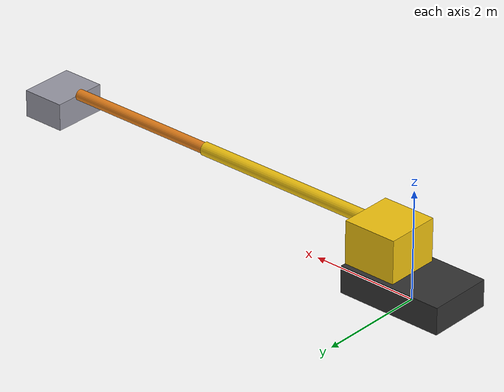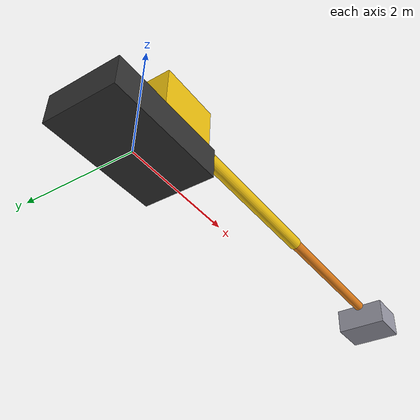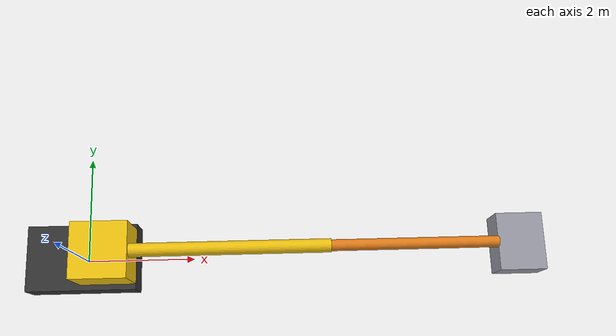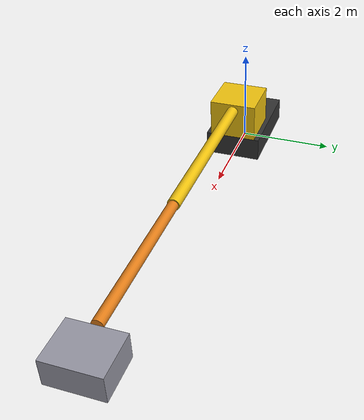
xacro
<?xml version="1.0"?>
<robot xmlns:xacro="http://www.ros.org/wiki/xacro" name="excavator">

  <!--  Excavator Robot URDF / Xacro                                 -->
  <!--  Links: base_link → chassis → cabin → boom → stick → bucket  -->
  <!--  Joints: base_joint (fixed to world)                          -->
  <!--          cabin_joint (continuous – swing)                     -->
  <!--          boom_joint  (revolute)                               -->
  <!--          stick_joint (revolute)                               -->
  <!--          bucket_joint (revolute)                              -->

  <!-- ===================== PROPERTIES ============================ -->
  <xacro:property name="chassis_length" value="2.0"/>
  <xacro:property name="chassis_width"  value="1.2"/>
  <xacro:property name="chassis_height" value="0.5"/>

  <xacro:property name="cabin_length" value="1.0"/>
  <xacro:property name="cabin_width"  value="1.0"/>
  <xacro:property name="cabin_height" value="0.8"/>

  <xacro:property name="boom_length"  value="3.5"/>
  <xacro:property name="boom_radius"  value="0.12"/>

  <xacro:property name="stick_length" value="2.9"/>
  <xacro:property name="stick_radius" value="0.10"/>

  <xacro:property name="bucket_length" value="0.8"/>
  <xacro:property name="bucket_width"  value="1.0"/>
  <xacro:property name="bucket_depth"  value="0.5"/>

  <!-- Colours -->
  <material name="yellow">
    <color rgba="0.95 0.77 0.06 1.0"/>
  </material>
  <material name="dark_grey">
    <color rgba="0.2 0.2 0.2 1.0"/>
  </material>
  <material name="orange">
    <color rgba="0.9 0.5 0.1 1.0"/>
  </material>
  <material name="steel">
    <color rgba="0.6 0.6 0.65 1.0"/>
  </material>

  <!-- ===================== BASE LINK ============================ -->
  <!-- world → base_link transform is published dynamically by base_motion_node -->
  <link name="base_link">
    <visual>
      <geometry>
        <box size="${chassis_length} ${chassis_width} ${chassis_height}"/>
      </geometry>
      <origin xyz="0 0 ${chassis_height/2}" rpy="0 0 0"/>
      <material name="dark_grey"/>
    </visual>
    <collision>
      <geometry>
        <box size="${chassis_length} ${chassis_width} ${chassis_height}"/>
      </geometry>
      <origin xyz="0 0 ${chassis_height/2}" rpy="0 0 0"/>
    </collision>
    <inertial>
      <mass value="5000.0"/>
      <origin xyz="0 0 ${chassis_height/2}" rpy="0 0 0"/>
      <inertia ixx="500.0" ixy="0" ixz="0" iyy="500.0" iyz="0" izz="500.0"/>
    </inertial>
  </link>

  <!-- ===================== CABIN (SWING) ======================== -->
  <link name="cabin_link">
    <visual>
      <geometry>
        <box size="${cabin_length} ${cabin_width} ${cabin_height}"/>
      </geometry>
      <origin xyz="${cabin_length/2} 0 ${cabin_height/2}" rpy="0 0 0"/>
      <material name="yellow"/>
    </visual>
    <collision>
      <geometry>
        <box size="${cabin_length} ${cabin_width} ${cabin_height}"/>
      </geometry>
      <origin xyz="${cabin_length/2} 0 ${cabin_height/2}" rpy="0 0 0"/>
    </collision>
    <inertial>
      <mass value="2000.0"/>
      <origin xyz="${cabin_length/2} 0 ${cabin_height/2}" rpy="0 0 0"/>
      <inertia ixx="200.0" ixy="0" ixz="0" iyy="200.0" iyz="0" izz="200.0"/>
    </inertial>
  </link>

  <joint name="cabin_joint" type="continuous">
    <parent link="base_link"/>
    <child  link="cabin_link"/>
    <origin xyz="0 0 ${chassis_height}" rpy="0 0 0"/>
    <axis xyz="0 0 1"/>
    <dynamics damping="50.0" friction="10.0"/>
  </joint>

  <!-- ===================== BOOM ================================= -->
  <link name="boom_link">
    <visual>
      <geometry>
        <cylinder length="${boom_length}" radius="${boom_radius}"/>
      </geometry>
      <!-- Cylinder centred at half-length along local Z, then tilt to point along X -->
      <origin xyz="${boom_length/2} 0 0" rpy="0 ${pi/2} 0"/>
      <material name="yellow"/>
    </visual>
    <collision>
      <geometry>
        <cylinder length="${boom_length}" radius="${boom_radius}"/>
      </geometry>
      <origin xyz="${boom_length/2} 0 0" rpy="0 ${pi/2} 0"/>
    </collision>
    <inertial>
      <mass value="500.0"/>
      <origin xyz="${boom_length/2} 0 0" rpy="0 ${pi/2} 0"/>
      <inertia ixx="50.0" ixy="0" ixz="0" iyy="50.0" iyz="0" izz="10.0"/>
    </inertial>
  </link>

  <joint name="boom_joint" type="revolute">
    <parent link="cabin_link"/>
    <child  link="boom_link"/>
    <origin xyz="${cabin_length} 0 ${cabin_height * 0.8}" rpy="0 0 0"/>
    <axis xyz="0 1 0"/>
    <limit lower="-1.5" upper="1.5" effort="10000.0" velocity="0.5"/>
    <dynamics damping="100.0" friction="20.0"/>
  </joint>

  <!-- ===================== STICK ================================= -->
  <link name="stick_link">
    <visual>
      <geometry>
        <cylinder length="${stick_length}" radius="${stick_radius}"/>
      </geometry>
      <origin xyz="${stick_length/2} 0 0" rpy="0 ${pi/2} 0"/>
      <material name="orange"/>
    </visual>
    <collision>
      <geometry>
        <cylinder length="${stick_length}" radius="${stick_radius}"/>
      </geometry>
      <origin xyz="${stick_length/2} 0 0" rpy="0 ${pi/2} 0"/>
    </collision>
    <inertial>
      <mass value="300.0"/>
      <origin xyz="${stick_length/2} 0 0" rpy="0 ${pi/2} 0"/>
      <inertia ixx="30.0" ixy="0" ixz="0" iyy="30.0" iyz="0" izz="5.0"/>
    </inertial>
  </link>

  <joint name="stick_joint" type="revolute">
    <parent link="boom_link"/>
    <child  link="stick_link"/>
    <origin xyz="${boom_length} 0 0" rpy="0 0 0"/>
    <axis xyz="0 1 0"/>
    <limit lower="-2.7" upper="2.7" effort="8000.0" velocity="0.5"/>
    <dynamics damping="80.0" friction="15.0"/>
  </joint>

  <!-- ===================== BUCKET ================================ -->
  <link name="bucket_link">
    <visual>
      <geometry>
        <box size="${bucket_length} ${bucket_width} ${bucket_depth}"/>
      </geometry>
      <origin xyz="${bucket_length/2} 0 ${-bucket_depth/2}" rpy="0 0 0"/>
      <material name="steel"/>
    </visual>
    <collision>
      <geometry>
        <box size="${bucket_length} ${bucket_width} ${bucket_depth}"/>
      </geometry>
      <origin xyz="${bucket_length/2} 0 ${-bucket_depth/2}" rpy="0 0 0"/>
    </collision>
    <inertial>
      <mass value="150.0"/>
      <origin xyz="${bucket_length/2} 0 ${-bucket_depth/2}" rpy="0 0 0"/>
      <inertia ixx="10.0" ixy="0" ixz="0" iyy="10.0" iyz="0" izz="5.0"/>
    </inertial>
  </link>

  <joint name="bucket_joint" type="revolute">
    <parent link="stick_link"/>
    <child  link="bucket_link"/>
    <origin xyz="${stick_length} 0 0" rpy="0 0 0"/>
    <axis xyz="0 1 0"/>
    <limit lower="-1.5" upper="2.5" effort="5000.0" velocity="0.8"/>
    <dynamics damping="40.0" friction="10.0"/>
  </joint>

  <!-- ===================== BUCKET TIP (END-EFFECTOR) ============= -->
  <link name="bucket_tip"/>

  <joint name="bucket_tip_joint" type="fixed">
    <parent link="bucket_link"/>
    <child  link="bucket_tip"/>
    <origin xyz="${bucket_length} 0 ${-bucket_depth}" rpy="0 0 0"/>
  </joint>

  <!-- ===================== ros2_control ========================== -->
  <ros2_control name="excavator_hw" type="system">
    <hardware>
      <plugin>mock_components/GenericSystem</plugin>
      <param name="calculate_dynamics">false</param>
    </hardware>

    <!-- Cabin swing -->
    <joint name="cabin_joint">
      <command_interface name="position"/>
      <state_interface name="position">
        <param name="initial_value">0.0</param>
      </state_interface>
      <state_interface name="velocity"/>
    </joint>

    <!-- Boom -->
    <joint name="boom_joint">
      <command_interface name="position"/>
      <state_interface name="position">
        <param name="initial_value">0.0</param>
      </state_interface>
      <state_interface name="velocity"/>
    </joint>

    <!-- Stick -->
    <joint name="stick_joint">
      <command_interface name="position"/>
      <state_interface name="position">
        <param name="initial_value">0.0</param>
      </state_interface>
      <state_interface name="velocity"/>
    </joint>

    <!-- Bucket -->
    <joint name="bucket_joint">
      <command_interface name="position"/>
      <state_interface name="position">
        <param name="initial_value">0.0</param>
      </state_interface>
      <state_interface name="velocity"/>
    </joint>
  </ros2_control>

</robot>
